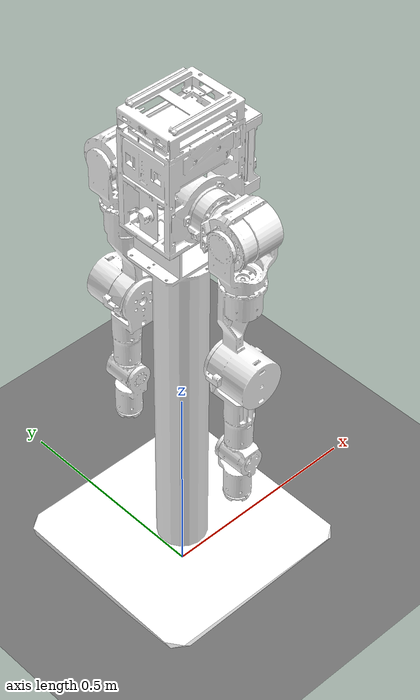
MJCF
<mujoco model="bipedal_robot">
  <option iterations="50" timestep="0.001" solver="PGS" gravity="0 0 -9.81" />

  <compiler angle="radian" meshdir="../meshes" eulerseq="zyx" autolimits="true" />

  <default>
    <joint limited="true" damping="0.01" armature="0.01" frictionloss="0.01" />
    <geom condim="4" contype="1" conaffinity="15" friction="0.9 0.2 0.2" solref="0.001 2" />
    <motor ctrllimited="true" />
    <equality solref="0.001 2" />
    <default class="visualgeom">
      <geom material="visualgeom" condim="1" contype="0" conaffinity="0" />
    </default>
  </default>

  <asset>
    <mesh name="base_Link" file="base_Link.STL" />
    <mesh name="abad_L_Link" file="abad_L_Link.STL" />
    <mesh name="hip_L_Link" file="hip_L_Link.STL" />
    <mesh name="yaw_L_Link" file="yaw_L_Link.STL" />
    <mesh name="knee_L_Link" file="knee_L_Link.STL" />
    <mesh name="wrist_yaw1_L_Link" file="wrist_yaw1_L_Link.STL" />
    <mesh name="wrist_roll_L_Link" file="wrist_roll_L_Link.STL" />
    <mesh name="wrist_yaw2_L_Link" file="wrist_yaw2_L_Link.STL" />
    <mesh name="abad_R_Link" file="abad_R_Link.STL" />
    <mesh name="hip_R_Link" file="hip_R_Link.STL" />
    <mesh name="base_2_Link" file="base_2_Link.STL" />
    <mesh name="base_3_Link" file="base_3_Link.STL" />
    <mesh name="yaw_R_Link" file="yaw_R_Link.STL" />
    <mesh name="wrist_yaw1_R_Link" file="wrist_yaw1_R_Link.STL" />
    <mesh name="knee_R_Link" file="knee_R_Link.STL" />
    <mesh name="wrist_yaw2_R_Link" file="wrist_yaw2_R_Link.STL" />
    <mesh name="wrist_roll_R_Link" file="wrist_roll_R_Link.STL" />
    <material name="visualgeom" rgba="0.5 0.9 0.2 1" />
    <texture name="texplane" type="2d" builtin="checker" rgb1="0.35 0.35 0.35" rgb2="0.55 0.55 0.55" width="512" height="512" mark="cross" markrgb=".8 .8 .8"/>
    <material name="matplane" reflectance="0.0" texture="texplane" texrepeat="1 1" texuniform="true"/>
  </asset>

  <worldbody>
    <light directional="true" diffuse="0.6 0.6 0.6" specular="0.2 0.2 0.2" pos="0 0 4" dir="0 0 -1" castshadow="false" />
    <geom name="ground" type="plane" pos="0 0 0" size="100 100 0.001" quat="1 0 0 0" material="matplane" condim="3" conaffinity="15" />
    <camera name="fixed" pos="0 -3.0 1.752444793451236" xyaxes="1 0 0 0 0 1" />
    <camera name="track" mode="trackcom" pos="0 -3.0 1.752444793451236" xyaxes="1 0 0 0 0 1" />
    <body name="root" pos="0 0 1" quat="1 0 0 0">
      <joint name="floating_base_joint" type="free" damping="100000001" stiffness="1000000001"/>
      <site name="imu" size="0.00001" pos="0 0 0" />
      <geom type="mesh" rgba="1 1 1 1" mesh="base_Link" contype="1" conaffinity="0" density="0" group="1" class="visualgeom" />
      <geom type="mesh" rgba="1 1 1 1" mesh="base_Link" />
      <geom pos="-0.00044 9e-05 -0.08605" quat="1 0 0 0" type="mesh" rgba="1 1 1 1" mesh="base_2_Link" contype="1" conaffinity="0" density="0" group="1" class="visualgeom" />
      <geom type="mesh" rgba="1 1 1 1" mesh="base_2_Link" pos="-0.00044 9e-05 -0.08605" quat="1 0 0 0" />
      <geom pos="-0.00044 9e-05 -0.89505" quat="1 0 0 0" type="mesh" rgba="1 1 1 1" mesh="base_3_Link" contype="1" conaffinity="0" density="0" group="1" class="visualgeom" />
      <geom type="mesh" rgba="1 1 1 1" mesh="base_3_Link" pos="-0.00044 9e-05 -0.89505" quat="1 0 0 0" />
      <body name="abad_L_Link" pos="-0.00049 0.10649 0.0586">
        <inertial pos="0.010597 0.059042 -8.6e-05" quat="0.42669 0.425045 0.548005 0.580486" mass="2.426" diaginertia="0.00416224 0.00407739 0.00383393" />
        <joint name="abad_L_Joint" pos="0 0 0" axis="0 1 0" range="-3.14159 2.60054" actuatorfrcrange="-130 130" />
        <geom type="mesh" rgba="1 1 1 1" mesh="abad_L_Link" contype="1" conaffinity="0" density="0" group="1" class="visualgeom" />
        <geom type="mesh" rgba="1 1 1 1" mesh="abad_L_Link" />
        <body name="hip_L_Link" pos="0.0497 0.062 0">
          <inertial pos="-0.047813 0.000265 -0.058577" quat="0.578195 0.404605 0.400792 0.584253" mass="0.503" diaginertia="0.00204649 0.00130801 0.00124713" />
          <joint name="hip_L_Joint" pos="0 0 0" axis="1 0 0" range="-0.260578 2.11315" actuatorfrcrange="-130 130" />
          <geom type="mesh" rgba="1 1 1 1" mesh="hip_L_Link" contype="1" conaffinity="0" density="0" group="1" class="visualgeom" />
          <geom type="mesh" rgba="1 1 1 1" mesh="hip_L_Link" />
          <body name="yaw_L_Link" pos="-0.0497 0 -0.1127">
            <inertial pos="4.8e-05 -0.005739 -0.169935" quat="0.671303 -0.00460702 0.00421587 0.741157" mass="3.436" diaginertia="0.0352709 0.0351764 0.00470801" />
            <joint name="yaw_L_Joint" pos="0 0 0" axis="0 0 1" range="-2.70526 1.48353" actuatorfrcrange="-40 40" />
            <geom type="mesh" rgba="1 1 1 1" mesh="yaw_L_Link" contype="1" conaffinity="0" density="0" group="1" class="visualgeom" />
            <geom type="mesh" rgba="1 1 1 1" mesh="yaw_L_Link" />
            <body name="knee_L_Link" pos="0 -0.04115 -0.2373">
              <inertial pos="7e-06 0.029496 -0.11127" quat="0.687198 0.0985624 -0.10163 0.712541" mass="1.192" diaginertia="0.00504173 0.0050048 0.00080993" />
              <joint name="knee_L_Joint" pos="0 0 0" axis="0 1 0" range="-2.61799 2.61799" actuatorfrcrange="-130 130" />
              <geom type="mesh" rgba="1 1 1 1" mesh="knee_L_Link" contype="1" conaffinity="0" density="0" group="1" class="visualgeom" />
              <geom type="mesh" rgba="1 1 1 1" mesh="knee_L_Link" />
              <body name="wrist_yaw1_L_Link" pos="0 0.04115 -0.1963">
                <inertial pos="-6.9e-05 0.004349 -0.034875" quat="0.680576 0.732628 0.00782462 0.00341562" mass="0.639" diaginertia="0.00052487 0.000473579 0.000456627" />
                <joint name="wrist_yaw1_L_Joint" pos="0 0 0" axis="0 0 1" range="-2.84489 2.84489" actuatorfrcrange="-20 20" />
                <geom type="mesh" rgba="1 1 1 1" mesh="wrist_yaw1_L_Link" contype="1" conaffinity="0" density="0" group="1" class="visualgeom" />
                <geom type="mesh" rgba="1 1 1 1" mesh="wrist_yaw1_L_Link" />
                <body name="wrist_roll_L_Link" pos="0 -0.031 -0.038">
                  <inertial pos="6.8e-05 0.02731 -0.066262" quat="0.980243 0.196606 0.00515897 -0.0210662" mass="0.643" diaginertia="0.000810822 0.000803094 0.000414694" />
                  <joint name="wrist_roll_L_Joint" pos="0 0 0" axis="0 1 0" range="-1.71042 1.71042" actuatorfrcrange="-20 20" />
                  <geom type="mesh" rgba="1 1 1 1" mesh="wrist_roll_L_Link" contype="1" conaffinity="0" density="0" group="1" class="visualgeom" />
                  <geom type="mesh" rgba="1 1 1 1" mesh="wrist_roll_L_Link" />
                  <body name="wrist_yaw2_L_Link" pos="0 0.031 -0.1083">
                    <inertial pos="-5.3e-05 0.000442 -0.003729" quat="0.523205 0.475431 -0.519296 0.480161" mass="0.033" diaginertia="1.58146e-05 8.37813e-06 7.96228e-06" />
                    <joint name="wrist_yaw2_L_Joint" pos="0 0 0" axis="0 0 1" range="-2.87979 2.87979" actuatorfrcrange="-20 20" />
                    <geom type="mesh" rgba="1 1 1 1" mesh="wrist_yaw2_L_Link" contype="1" conaffinity="0" density="0" group="1" class="visualgeom" />
                    <geom type="mesh" rgba="1 1 1 1" mesh="wrist_yaw2_L_Link" />
                  </body>
                </body>
              </body>
            </body>
          </body>
        </body>
      </body>
      <body name="abad_R_Link" pos="0.00049 -0.10631 0.0586">
        <inertial pos="-0.010597 -0.059042 -8.6e-05" quat="0.425045 0.42669 0.580486 0.548005" mass="2.426" diaginertia="0.00416224 0.00407739 0.00383393" />
        <joint name="abad_R_Joint" pos="0 0 0" axis="0 1 0" range="-3.14159 2.60054" actuatorfrcrange="-130 130" />
        <geom type="mesh" rgba="1 1 1 1" mesh="abad_R_Link" contype="1" conaffinity="0" density="0" group="1" class="visualgeom" />
        <geom type="mesh" rgba="1 1 1 1" mesh="abad_R_Link" />
        <body name="hip_R_Link" pos="-0.0497 -0.062 0">
          <inertial pos="0.047813 -0.000265 -0.058577" quat="0.404605 0.578195 0.584253 0.400792" mass="0.503" diaginertia="0.00204649 0.00130801 0.00124713" />
          <joint name="hip_R_Joint" pos="0 0 0" axis="1 0 0" range="-2.11315 0.260578" actuatorfrcrange="-130 130" />
          <geom type="mesh" rgba="1 1 1 1" mesh="hip_R_Link" contype="1" conaffinity="0" density="0" group="1" class="visualgeom" />
          <geom type="mesh" rgba="1 1 1 1" mesh="hip_R_Link" />
          <body name="yaw_R_Link" pos="0.0497 0 -0.1127">
            <inertial pos="4.8e-05 0.005739 -0.169935" quat="0.741157 0.00421587 -0.00460702 0.671303" mass="3.436" diaginertia="0.0352709 0.0351764 0.00470801" />
            <joint name="yaw_R_Joint" pos="0 0 0" axis="0 0 1" range="-1.48353 2.70526" actuatorfrcrange="-40 40" />
            <geom type="mesh" rgba="1 1 1 1" mesh="yaw_R_Link" contype="1" conaffinity="0" density="0" group="1" class="visualgeom" />
            <geom type="mesh" rgba="1 1 1 1" mesh="yaw_R_Link" />
            <body name="knee_R_Link" pos="0 0.04115 -0.2373">
              <inertial pos="7e-06 -0.029496 -0.11127" quat="0.712541 -0.10163 0.0985624 0.687198" mass="1.192" diaginertia="0.00504173 0.0050048 0.00080993" />
              <joint name="knee_R_Joint" pos="0 0 0" axis="0 1 0" range="-2.61799 2.61799" actuatorfrcrange="-130 130" />
              <geom type="mesh" rgba="1 1 1 1" mesh="knee_R_Link" contype="1" conaffinity="0" density="0" group="1" class="visualgeom" />
              <geom type="mesh" rgba="1 1 1 1" mesh="knee_R_Link" />
              <body name="wrist_yaw1_R_Link" pos="0 -0.04115 -0.1963">
                <inertial pos="-6.9e-05 -0.004349 -0.034875" quat="0.732628 0.680576 -0.00341562 -0.00782462" mass="0.639" diaginertia="0.00052487 0.000473579 0.000456627" />
                <joint name="wrist_yaw1_R_Joint" pos="0 0 0" axis="0 0 1" range="-2.84489 2.84489" actuatorfrcrange="-20 20" />
                <geom type="mesh" rgba="1 1 1 1" mesh="wrist_yaw1_R_Link" contype="1" conaffinity="0" density="0" group="1" class="visualgeom" />
                <geom type="mesh" rgba="1 1 1 1" mesh="wrist_yaw1_R_Link" />
                <body name="wrist_roll_R_Link" pos="0 0.031 -0.038">
                  <inertial pos="6.8e-05 -0.02731 -0.066262" quat="0.980243 -0.196606 0.00515897 0.0210662" mass="0.643" diaginertia="0.000810822 0.000803094 0.000414694" />
                  <joint name="wrist_roll_R_Joint" pos="0 0 0" axis="0 1 0" range="-1.71042 1.71042" actuatorfrcrange="-20 20" />
                  <geom type="mesh" rgba="1 1 1 1" mesh="wrist_roll_R_Link" contype="1" conaffinity="0" density="0" group="1" class="visualgeom" />
                  <geom type="mesh" rgba="1 1 1 1" mesh="wrist_roll_R_Link" />
                  <body name="wrist_yaw2_R_Link" pos="0 -0.031 -0.1083">
                    <inertial pos="-5.3e-05 -0.000442 -0.003729" quat="0.475431 0.523205 -0.480161 0.519296" mass="0.033" diaginertia="1.58146e-05 8.37813e-06 7.96228e-06" />
                    <joint name="wrist_yaw2_R_Joint" pos="0 0 0" axis="0 0 1" range="-2.87979 2.87979" actuatorfrcrange="-20 20" />
                    <geom type="mesh" rgba="1 1 1 1" mesh="wrist_yaw2_R_Link" contype="1" conaffinity="0" density="0" group="1" class="visualgeom" />
                    <geom type="mesh" rgba="1 1 1 1" mesh="wrist_yaw2_R_Link" />
                  </body>
                </body>
              </body>
            </body>
          </body>
        </body>
      </body>
    </body>
  </worldbody>

  <actuator>
    <motor name="abad_L_Joint" joint="abad_L_Joint" ctrllimited="true" ctrlrange="-130 130" gear="1" />
    <motor name="hip_L_Joint" joint="hip_L_Joint" ctrllimited="true" ctrlrange="-130 130" gear="1" />
    <motor name="yaw_L_Joint" joint="yaw_L_Joint" ctrllimited="true" ctrlrange="-40 40" gear="1" />
    <motor name="knee_L_Joint" joint="knee_L_Joint" ctrllimited="true" ctrlrange="-130 130" gear="1" />
    <motor name="wrist_yaw1_L_Joint" joint="wrist_yaw1_L_Joint" ctrllimited="true" ctrlrange="-20 20" gear="1" />
    <motor name="wrist_roll_L_Joint" joint="wrist_roll_L_Joint" ctrllimited="true" ctrlrange="-20 20" gear="1" />
    <motor name="wrist_yaw2_L_Joint" joint="wrist_yaw2_L_Joint" ctrllimited="true" ctrlrange="-20 20" gear="1" />
    <motor name="abad_R_Joint" joint="abad_R_Joint" ctrllimited="true" ctrlrange="-130 130" gear="1" />
    <motor name="hip_R_Joint" joint="hip_R_Joint" ctrllimited="true" ctrlrange="-130 130" gear="1" />
    <motor name="yaw_R_Joint" joint="yaw_R_Joint" ctrllimited="true" ctrlrange="-40 40" gear="1" />
    <motor name="knee_R_Joint" joint="knee_R_Joint" ctrllimited="true" ctrlrange="-130 130" gear="1" />
    <motor name="wrist_yaw1_R_Joint" joint="wrist_yaw1_R_Joint" ctrllimited="true" ctrlrange="-20 20" gear="1" />
    <motor name="wrist_roll_R_Joint" joint="wrist_roll_R_Joint" ctrllimited="true" ctrlrange="-20 20" gear="1" />
    <motor name="wrist_yaw2_R_Joint" joint="wrist_yaw2_R_Joint" ctrllimited="true" ctrlrange="-20 20" gear="1" />
  </actuator>

  <sensor>
    <actuatorpos name="abad_L_Joint_p" actuator="abad_L_Joint" />
    <actuatorvel name="abad_L_Joint_v" actuator="abad_L_Joint" />
    <actuatorfrc name="abad_L_Joint_f" actuator="abad_L_Joint" noise="0.001" />
    <actuatorpos name="hip_L_Joint_p" actuator="hip_L_Joint" />
    <actuatorvel name="hip_L_Joint_v" actuator="hip_L_Joint" />
    <actuatorfrc name="hip_L_Joint_f" actuator="hip_L_Joint" noise="0.001" />
    <actuatorpos name="yaw_L_Joint_p" actuator="yaw_L_Joint" />
    <actuatorvel name="yaw_L_Joint_v" actuator="yaw_L_Joint" />
    <actuatorfrc name="yaw_L_Joint_f" actuator="yaw_L_Joint" noise="0.001" />
    <actuatorpos name="knee_L_Joint_p" actuator="knee_L_Joint" />
    <actuatorvel name="knee_L_Joint_v" actuator="knee_L_Joint" />
    <actuatorfrc name="knee_L_Joint_f" actuator="knee_L_Joint" noise="0.001" />
    <actuatorpos name="wrist_yaw1_L_Joint_p" actuator="wrist_yaw1_L_Joint" />
    <actuatorvel name="wrist_yaw1_L_Joint_v" actuator="wrist_yaw1_L_Joint" />
    <actuatorfrc name="wrist_yaw1_L_Joint_f" actuator="wrist_yaw1_L_Joint" noise="0.001" />
    <actuatorpos name="wrist_roll_L_Joint_p" actuator="wrist_roll_L_Joint" />
    <actuatorvel name="wrist_roll_L_Joint_v" actuator="wrist_roll_L_Joint" />
    <actuatorfrc name="wrist_roll_L_Joint_f" actuator="wrist_roll_L_Joint" noise="0.001" />
    <actuatorpos name="wrist_yaw2_L_Joint_p" actuator="wrist_yaw2_L_Joint" />
    <actuatorvel name="wrist_yaw2_L_Joint_v" actuator="wrist_yaw2_L_Joint" />
    <actuatorfrc name="wrist_yaw2_L_Joint_f" actuator="wrist_yaw2_L_Joint" noise="0.001" />
    <actuatorpos name="abad_R_Joint_p" actuator="abad_R_Joint" />
    <actuatorvel name="abad_R_Joint_v" actuator="abad_R_Joint" />
    <actuatorfrc name="abad_R_Joint_f" actuator="abad_R_Joint" noise="0.001" />
    <actuatorpos name="hip_R_Joint_p" actuator="hip_R_Joint" />
    <actuatorvel name="hip_R_Joint_v" actuator="hip_R_Joint" />
    <actuatorfrc name="hip_R_Joint_f" actuator="hip_R_Joint" noise="0.001" />
    <actuatorpos name="yaw_R_Joint_p" actuator="yaw_R_Joint" />
    <actuatorvel name="yaw_R_Joint_v" actuator="yaw_R_Joint" />
    <actuatorfrc name="yaw_R_Joint_f" actuator="yaw_R_Joint" noise="0.001" />
    <actuatorpos name="knee_R_Joint_p" actuator="knee_R_Joint" />
    <actuatorvel name="knee_R_Joint_v" actuator="knee_R_Joint" />
    <actuatorfrc name="knee_R_Joint_f" actuator="knee_R_Joint" noise="0.001" />
    <actuatorpos name="wrist_yaw1_R_Joint_p" actuator="wrist_yaw1_R_Joint" />
    <actuatorvel name="wrist_yaw1_R_Joint_v" actuator="wrist_yaw1_R_Joint" />
    <actuatorfrc name="wrist_yaw1_R_Joint_f" actuator="wrist_yaw1_R_Joint" noise="0.001" />
    <actuatorpos name="wrist_roll_R_Joint_p" actuator="wrist_roll_R_Joint" />
    <actuatorvel name="wrist_roll_R_Joint_v" actuator="wrist_roll_R_Joint" />
    <actuatorfrc name="wrist_roll_R_Joint_f" actuator="wrist_roll_R_Joint" noise="0.001" />
    <actuatorpos name="wrist_yaw2_R_Joint_p" actuator="wrist_yaw2_R_Joint" />
    <actuatorvel name="wrist_yaw2_R_Joint_v" actuator="wrist_yaw2_R_Joint" />
    <actuatorfrc name="wrist_yaw2_R_Joint_f" actuator="wrist_yaw2_R_Joint" noise="0.001" />

    <framequat name="quat" objtype="site" noise="0.001" objname="imu" />
    <gyro name="gyro" site="imu" noise="0.005" cutoff="34.9" />
    <accelerometer name="acc" site="imu"/>
  </sensor>
</mujoco>
